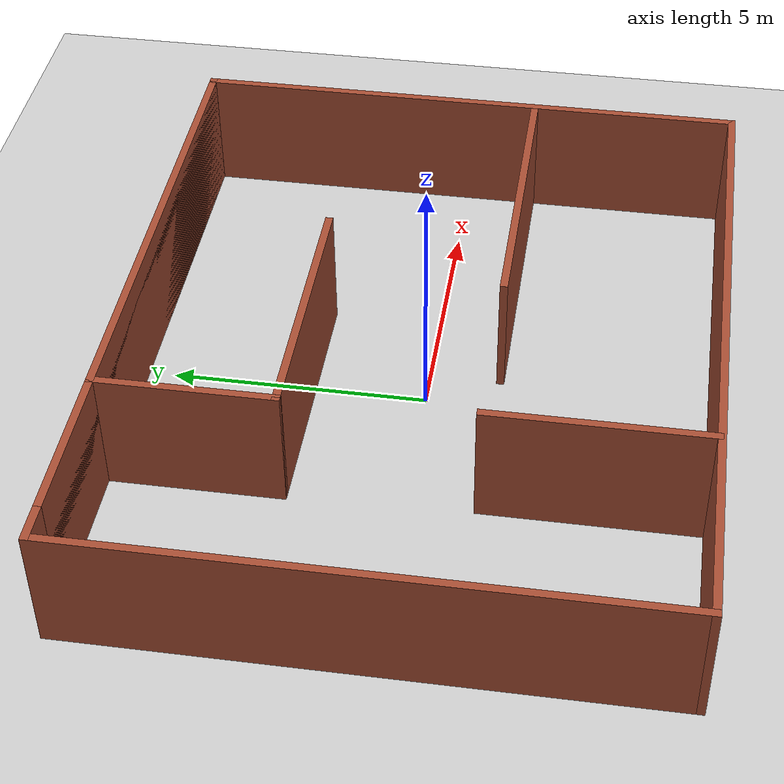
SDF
<sdf version="1.7">
 <world name="default">
  <light name="sun" type="directional">
   <pose>0 0 10 0 -0 0</pose>
   <diffuse>0.8 0.8 0.8 1</diffuse>
   <specular>0.2 0.2 0.2 1</specular>
   <attenuation>
    <range>1000</range>
    <constant>0.9</constant>
    <linear>0.01</linear>
    <quadratic>0.001</quadratic>
   </attenuation>
   <direction>-0.5 0.1 -0.9</direction>
   <spot><inner_angle>0</inner_angle><outer_angle>0</outer_angle><falloff>0</falloff></spot>
  </light>
  <model name="ground_plane">
   <static>1</static>
   <link name="link">
    <collision name="collision">
     <geometry><plane><normal>0 0 1</normal><size>100 100</size></plane></geometry>
     <surface><friction><ode><mu>100</mu><mu2>50</mu2></ode></friction></surface>
    </collision>
    <visual name="visual">
     <cast_shadows>0</cast_shadows>
     <geometry><plane><normal>0 0 1</normal><size>100 100</size></plane></geometry>
     <material>
      <script><uri>file://media/materials/scripts/gazebo.material</uri><name>Gazebo/Grey</name></script>
     </material>
    </visual>
   </link>
  </model>
  <gravity>0 0 -9.8</gravity>
  <magnetic_field>6e-06 2.3e-05 -4.2e-05</magnetic_field>
  <atmosphere type="adiabatic"/>
  <physics type="ode">
   <max_step_size>0.001</max_step_size>
   <real_time_factor>1</real_time_factor>
   <real_time_update_rate>1000</real_time_update_rate>
  </physics>
  <scene><ambient>0.4 0.4 0.4 1</ambient><background>0.7 0.7 0.7 1</background><shadows>1</shadows></scene>
  <audio><device>default</device></audio>
  <spherical_coordinates>
   <surface_model>EARTH_WGS84</surface_model>
   <latitude_deg>0</latitude_deg>
   <longitude_deg>0</longitude_deg>
   <elevation>0</elevation>
   <heading_deg>0</heading_deg>
  </spherical_coordinates>
  <model name="simple">
   <pose>0.002184 0.042069 0 0 -0 0</pose>
   <link name="Wall_1">
    <collision name="Wall_1_Collision">
     <geometry><box><size>12.75 0.15 2.5</size></box></geometry>
     <pose>0 0 1.25 0 -0 0</pose>
    </collision>
    <visual name="Wall_1_Visual">
     <pose>0 0 1.25 0 -0 0</pose>
     <geometry><box><size>12.75 0.15 2.5</size></box></geometry>
     <material>
      <script><uri>file://media/materials/scripts/gazebo.material</uri><name>Gazebo/Bricks</name></script>
      <ambient>1 1 1 1</ambient>
     </material>
     <meta><layer>0</layer></meta>
    </visual>
    <pose>0.375 5.55 0 0 -0 0</pose>
   </link>
   <link name="Wall_10">
    <collision name="Wall_10_Collision">
     <geometry><box><size>6 0.15 2.5</size></box></geometry>
     <pose>0 0 1.25 0 -0 0</pose>
    </collision>
    <visual name="Wall_10_Visual">
     <pose>0 0 1.25 0 -0 0</pose>
     <geometry><box><size>6 0.15 2.5</size></box></geometry>
     <material>
      <script><uri>file://media/materials/scripts/gazebo.material</uri><name>Gazebo/Bricks</name></script>
      <ambient>1 1 1 1</ambient>
     </material>
     <meta><layer>0</layer></meta>
    </visual>
    <pose>3.67364 -1.41539 0 0 -0 3.14159</pose>
   </link>
   <link name="Wall_13">
    <collision name="Wall_13_Collision">
     <geometry><box><size>4.25 0.15 2.5</size></box></geometry>
     <pose>0 0 1.25 0 -0 0</pose>
    </collision>
    <visual name="Wall_13_Visual">
     <pose>0 0 1.25 0 -0 0</pose>
     <geometry><box><size>4.25 0.15 2.5</size></box></geometry>
     <material>
      <script><uri>file://media/materials/scripts/gazebo.material</uri><name>Gazebo/Bricks</name></script>
      <ambient>1 1 1 1</ambient>
     </material>
     <meta><layer>0</layer></meta>
    </visual>
    <pose>-2.75121 -3.4473 0 0 -0 1.5708</pose>
   </link>
   <link name="Wall_2">
    <collision name="Wall_2_Collision">
     <geometry><box><size>11.25 0.15 2.5</size></box></geometry>
     <pose>0 0 1.25 0 -0 0</pose>
    </collision>
    <visual name="Wall_2_Visual">
     <pose>0 0 1.25 0 -0 0</pose>
     <geometry><box><size>11.25 0.15 2.5</size></box></geometry>
     <material>
      <script><uri>file://media/materials/scripts/gazebo.material</uri><name>Gazebo/Bricks</name></script>
      <ambient>1 1 1 1</ambient>
     </material>
     <meta><layer>0</layer></meta>
    </visual>
    <pose>6.675 0 0 0 -0 -1.5708</pose>
   </link>
   <link name="Wall_3">
    <collision name="Wall_3_Collision">
     <geometry><box><size>13.5 0.15 2.5</size></box></geometry>
     <pose>0 0 1.25 0 -0 0</pose>
    </collision>
    <visual name="Wall_3_Visual">
     <pose>0 0 1.25 0 -0 0</pose>
     <geometry><box><size>13.5 0.15 2.5</size></box></geometry>
     <material>
      <script><uri>file://media/materials/scripts/gazebo.material</uri><name>Gazebo/Bricks</name></script>
      <ambient>1 1 1 1</ambient>
     </material>
     <meta><layer>0</layer></meta>
    </visual>
    <pose>0 -5.55 0 0 -0 3.14159</pose>
   </link>
   <link name="Wall_4">
    <collision name="Wall_4_Collision">
     <geometry><box><size>11.25 0.15 2.5</size></box></geometry>
     <pose>0 0 1.25 0 -0 0</pose>
    </collision>
    <visual name="Wall_4_Visual">
     <pose>0 0 1.25 0 -0 0</pose>
     <geometry><box><size>11.25 0.15 2.5</size></box></geometry>
     <material>
      <script><uri>file://media/materials/scripts/gazebo.material</uri><name>Gazebo/Bricks</name></script>
      <ambient>1 1 1 1</ambient>
     </material>
     <meta><layer>0</layer></meta>
    </visual>
    <pose>-6.675 0 0 0 -0 1.5708</pose>
   </link>
   <link name="Wall_5">
    <collision name="Wall_5_Collision">
     <geometry><box><size>13.5 0.15 2.5</size></box></geometry>
     <pose>0 0 1.25 0 -0 0</pose>
    </collision>
    <visual name="Wall_5_Visual">
     <pose>0 0 1.25 0 -0 0</pose>
     <geometry><box><size>13.5 0.15 2.5</size></box></geometry>
     <material>
      <script><uri>file://media/materials/scripts/gazebo.material</uri><name>Gazebo/Bricks</name></script>
      <ambient>1 1 1 1</ambient>
     </material>
     <meta><layer>0</layer></meta>
    </visual>
    <pose>0 5.55 0 0 -0 0</pose>
   </link>
   <link name="Wall_7">
    <collision name="Wall_7_Collision">
     <geometry><box><size>3.5 0.15 2.5</size></box></geometry>
     <pose>0 0 1.25 0 -0 0</pose>
    </collision>
    <visual name="Wall_7_Visual">
     <pose>0 0 1.25 0 -0 0</pose>
     <geometry><box><size>3.5 0.15 2.5</size></box></geometry>
     <material>
      <script><uri>file://media/materials/scripts/gazebo.material</uri><name>Gazebo/Bricks</name></script>
      <ambient>1 1 1 1</ambient>
     </material>
     <meta><layer>0</layer></meta>
    </visual>
    <pose>-2.89963 3.875 0 0 -0 -1.5708</pose>
   </link>
   <link name="Wall_8">
    <collision name="Wall_8_Collision">
     <geometry><box><size>5.25 0.15 2.5</size></box></geometry>
     <pose>0 0 1.25 0 -0 0</pose>
    </collision>
    <visual name="Wall_8_Visual">
     <pose>0 0 1.25 0 -0 0</pose>
     <geometry><box><size>5.25 0.15 2.5</size></box></geometry>
     <material>
      <script><uri>file://media/materials/scripts/gazebo.material</uri><name>Gazebo/Bricks</name></script>
      <ambient>1 1 1 1</ambient>
     </material>
     <meta><layer>0</layer></meta>
    </visual>
    <pose>-0.349626 2.2 0 0 -0 0</pose>
   </link>
   <static>1</static>
  </model>
 </world>
</sdf>
